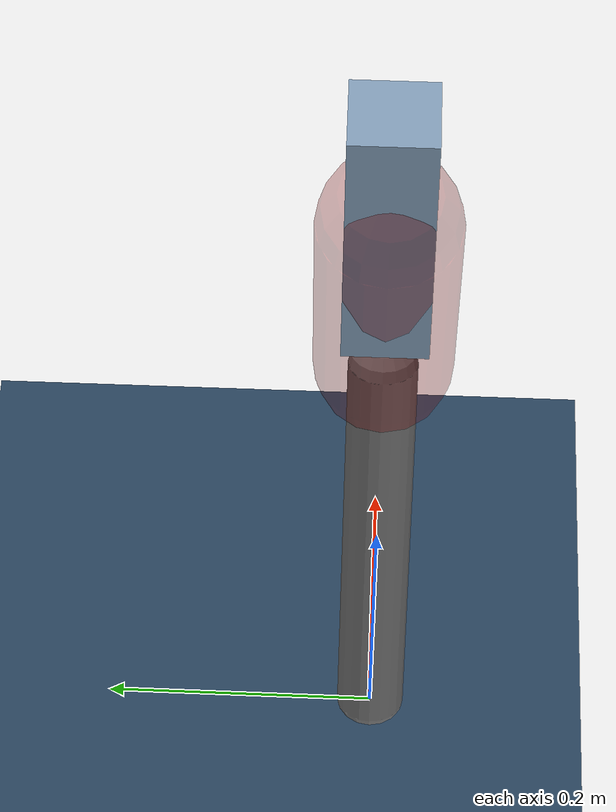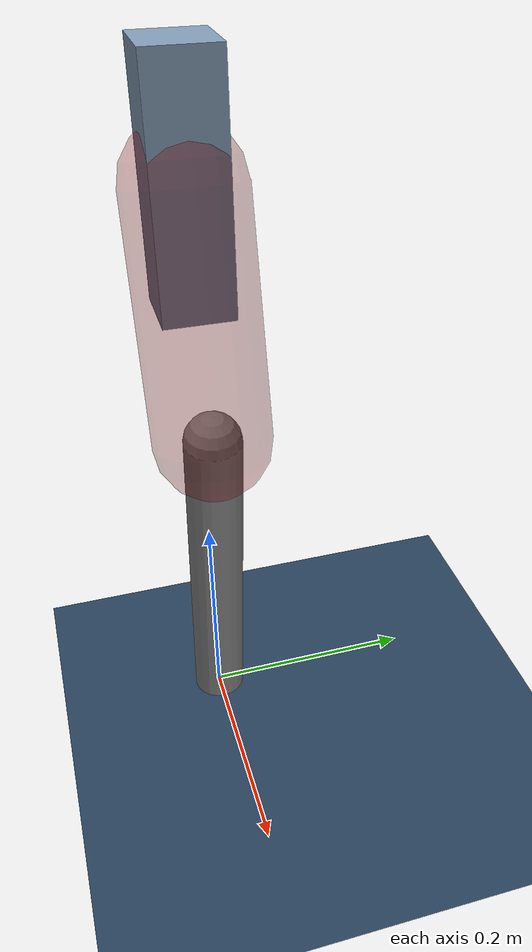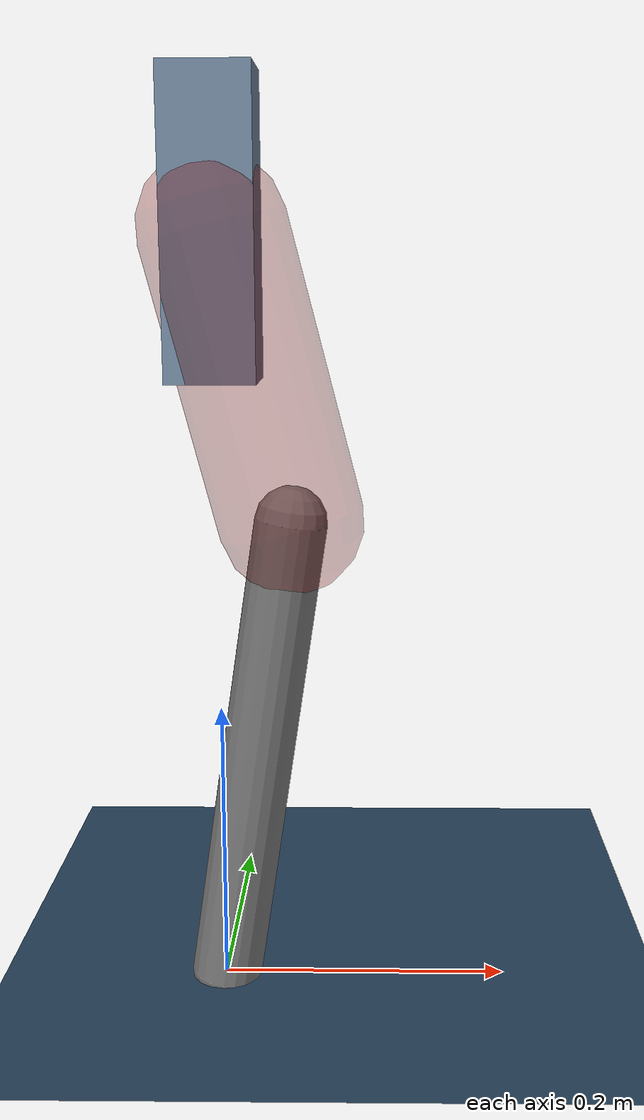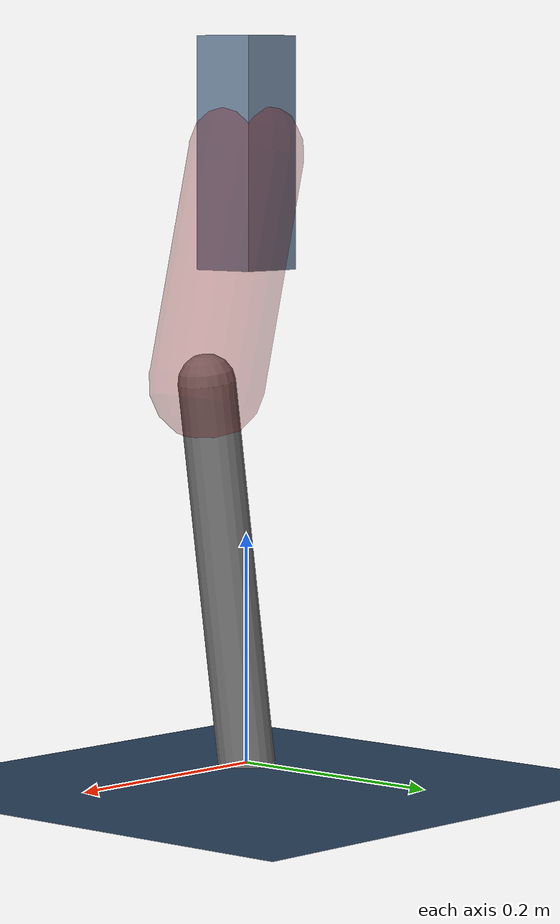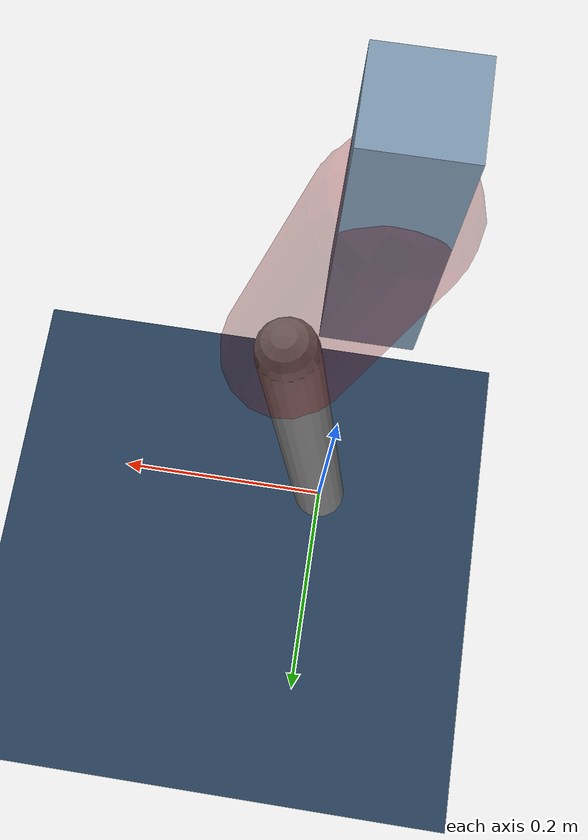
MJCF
<mujoco model="Hopper2D">
	<compiler inertiafromgeom="true" angle="radian" />
	<option timestep="0.001" integrator="implicit" cone="elliptic" solver="Newton" tolerance="1e-10" />

	<default>
		<geom contype="1" conaffinity="1" condim="3" friction="2 0.005 0.0001" solref="0.005 1" />
		<joint limited="true" damping="0.1" />
	</default>

	<asset>
		<texture name="skybox" type="skybox" builtin="gradient" rgb1=".4 .6 .8" rgb2="0 0 0" width="800" height="800" />
		<texture name="grid" type="2d" builtin="checker" rgb1=".1 .2 .3" rgb2=".2 .3 .4" width="300" height="300" mark="edge" markrgb=".2 .3 .4" />
		<material name="ground" texture="grid" texrepeat="1 1" texuniform="true" reflectance="0.1" />
		<material name="leg" rgba="0.5 0.6 0.7 1" />
	</asset>

	<worldbody>

		<geom name="floor" type="plane" size="5 5 0.25" material="ground" />

		<light directional="false" diffuse="0.8 0.8 0.8" specular="0.3 0.3 0.3" pos="0 0 2" dir="0 0 -1" />
		<light mode="targetbodycom" target="base" directional="false" diffuse="0.8 0.8 0.8" specular="0.3 0.3 0.3" pos="0 0 2" dir="0 0 -1" />

		<camera name="fixed" pos="0 -2 1" xyaxes="1 0 0 0 0 1" />
		<camera name="tracking" mode="trackcom" pos="0 -3 1" />

		<body name="root" pos="0 0 0.5277896902155184">
			<joint name="slide_x" type="slide" axis="1 0 0" range="-100 100" />
			<joint name="slide_z" type="slide" axis="0 0 1" range="0 10" />

			<body name="base" pos="0 0 0">
				<geom name="torso" type="box" size="0.03 0.03 0.1" mass="2.346" material="leg" />

				<body name="link1" pos="0 0 0" euler="0 1.3199246248053005 0">
					<joint type="hinge" axis="0 -1 0" pos="0 0 0" name="hinge1" limited="true" range="-3.14 3.14" stiffness="0" damping="0.1" />
					<geom name="thigh" type="capsule" fromto="0 0 0 0.20088804537769456 0 0" size="0.05" rgba="0.5 0 0 0.3" mass="0.7318201134442364" />

					<body name="link2" pos="0.20088804537769456 0 0" euler="0 0.3994435261593302 0">
						<joint type="hinge" axis="0 -1 0" pos="0 0 0" name="hinge2" limited="true" range="-3.14 3.14" stiffness="0" damping="0.1" />
						<geom name="shank" type="capsule" fromto="0 0 0 0.3369016448378238 0 0" size="0.025" mass="0.513321315870259" />

					</body>
				</body>
			</body>
		</body>
	</worldbody>

	<actuator>
		<motor name="torque1" joint="hinge1" ctrlrange="-78.72349135864587 78.72349135864587" ctrllimited="true" gear="1" />
		<motor name="torque2" joint="hinge2" ctrlrange="-53.92267102787038 53.92267102787038" ctrllimited="true" gear="1" />
	</actuator>
</mujoco>
